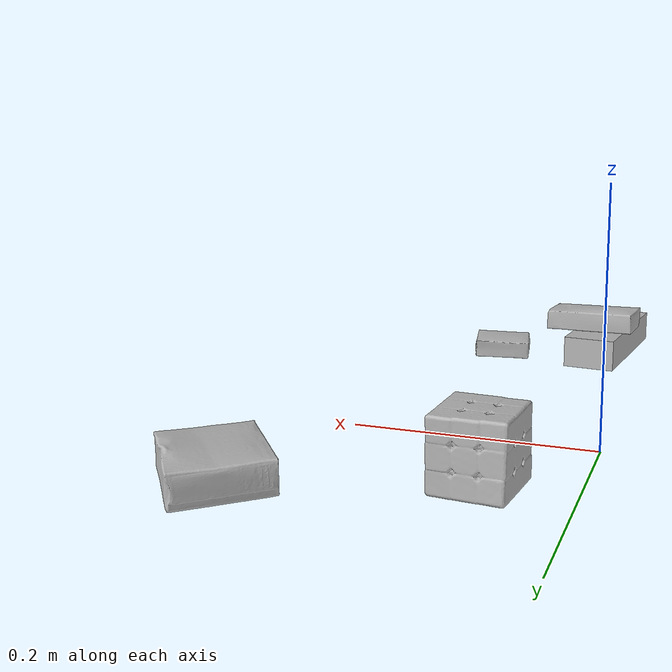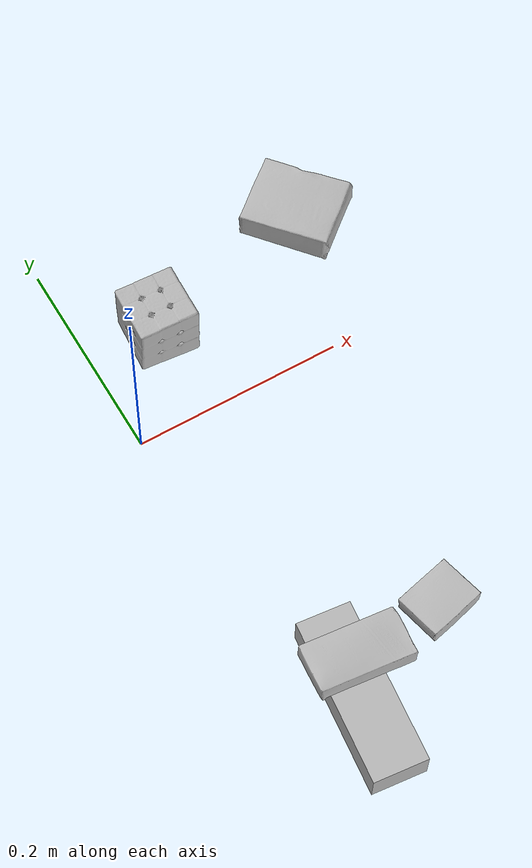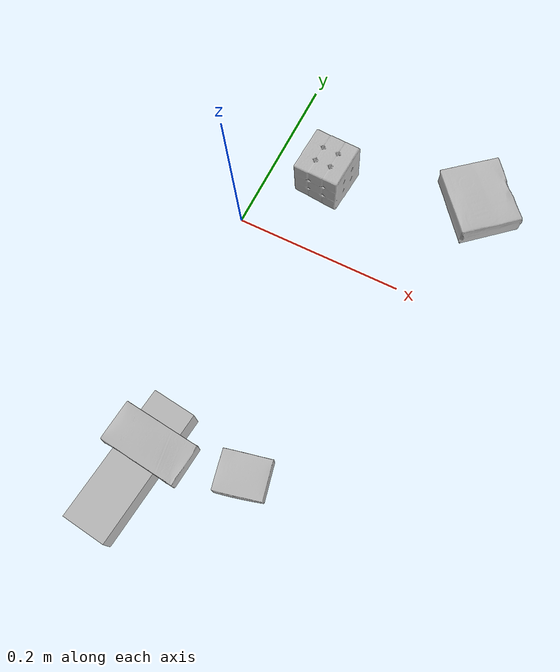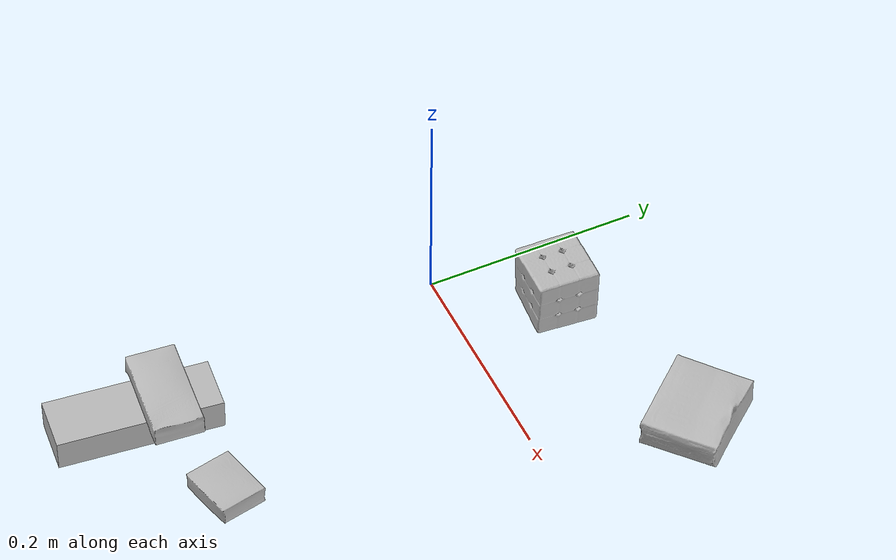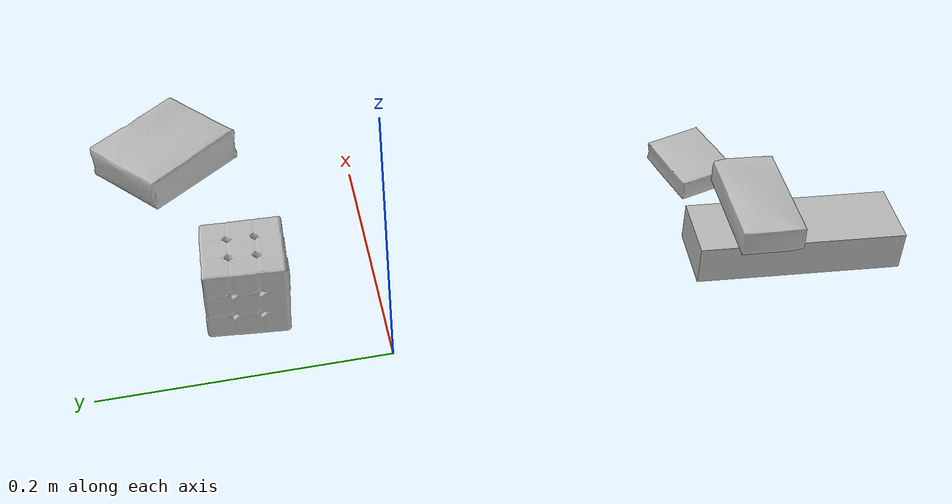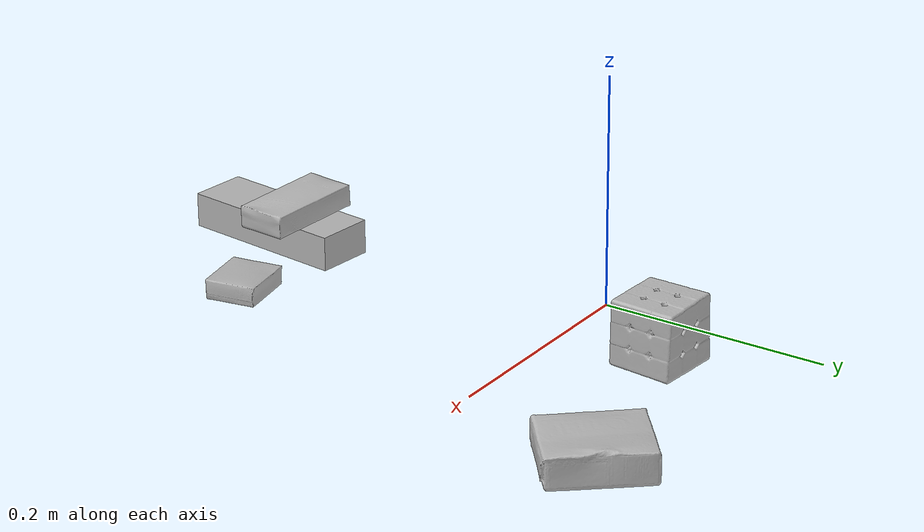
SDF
<sdf version="1.4">
  <world name="default">
    <light name="light1" type="point">
      <pose>0 0 1 0 0 0</pose>
      <diffuse>3 3 3 1</diffuse>
      <specular>3 3 3 1</specular>
    </light>
    <light name="light2" type="point">
      <pose>0 0.5 2 0 0 0</pose>
      <diffuse>1 1 1 1</diffuse>
      <specular>1 1 1 1</specular>
    </light>
    <light name="light3" type="point">
      <pose>0 0.5 2 0 0 0</pose>
      <diffuse>3 3 3 1</diffuse>
      <specular>3 3 3 1</specular>
    </light>
    <scene>
      <ambient>0.7 0.7 0.7</ambient>
    </scene>
    <model name="box1">
      <link name="link_box1">
        <collision name="default">
          <geometry>
            <mesh>
              <uri>model://jenga/collision_meshes/collision.obj</uri>
              <scale>1.0 1.0 1.0</scale>
            </mesh>
          </geometry>
          <surface>
            <friction>
              <ode>
                <mu>0.5</mu>
                <mu2>0.5</mu2>
              </ode>
            </friction>
          <contact>
        <ode>
            <max_vel>0</max_vel>
            <min_depth>0.0001</min_depth>
            <kp>1e8</kp>
        </ode>
    </contact></surface>
        </collision>
        <visual name="default">
          <geometry>
            <mesh>
              <uri>model://jenga/visual_meshes/visual.dae</uri>
              <scale>1.0 1.0 1.0</scale>
            </mesh>
          </geometry>
        </visual>
        <inertial>
          <mass>0.28879067301750183</mass>
          <pose>-2.502855807051674e-07 -0.00010250010382151231 -4.0923401684267446e-05 0.0 -7.342154049184251e-07 0.0</pose>
          <inertia>
            <ixx>7.991539e-05</ixx>
            <iyy>0.00054150453</iyy>
            <izz>0.00057810213</izz>
            <ixy>0</ixy>
            <ixz>0</ixz>
            <iyz>0</iyz>
          </inertia>
        </inertial>
      </link>
      <pose>0.03955833613872528 -0.30395641922950745 0.015000040642917156 1.1151063788062428e-06 3.7561003383916187e-07 1.4600556917500072</pose>
    </model>
    <model name="box2">
      <link name="link_box2">
        <collision name="default">
          <geometry>
            <mesh>
              <uri>model://sugar_box/collision_meshes/collision.obj</uri>
              <scale>0.5 0.5 0.5</scale>
            </mesh>
          </geometry>
          <surface>
            <friction>
              <ode>
                <mu>0.5</mu>
                <mu2>0.5</mu2>
              </ode>
            </friction>
          <contact>
        <ode>
            <max_vel>0</max_vel>
            <min_depth>0.0001</min_depth>
            <kp>1e8</kp>
        </ode>
    </contact></surface>
        </collision>
        <visual name="default">
          <geometry>
            <mesh>
              <uri>model://sugar_box/visual_meshes/visual.dae</uri>
              <scale>0.5 0.5 0.5</scale>
            </mesh>
          </geometry>
        </visual>
        <inertial>
          <mass>0.10389333218336105</mass>
          <pose>0.000517186417710036 1.9245549992774613e-05 -0.00018182402709499002 -0.00040462615469338603 0.0010506637547558321 0.0026153785561208315</pose>
          <inertia>
            <ixx>2.1640906e-05</ixx>
            <iyy>6.994788e-05</iyy>
            <izz>8.373595e-05</izz>
            <ixy>0</ixy>
            <ixz>0</ixz>
            <iyz>0</iyz>
          </inertia>
        </inertial>
      </link>
      <pose>0.05124278739094734 -0.27820098400115967 0.04135921970009804 -0.008912480512801907 -0.023826663680569876 3.0385771561931065</pose>
    </model>
    <model name="box3">
      <link name="link_box3">
        <collision name="default">
          <geometry>
            <mesh>
              <uri>model://rubiks_cube/collision_meshes/collision.obj</uri>
              <scale>1.0 1.0 1.0</scale>
            </mesh>
          </geometry>
          <surface>
            <friction>
              <ode>
                <mu>0.5</mu>
                <mu2>0.5</mu2>
              </ode>
            </friction>
          <contact>
        <ode>
            <max_vel>0</max_vel>
            <min_depth>0.0001</min_depth>
            <kp>1e8</kp>
        </ode>
    </contact></surface>
        </collision>
        <visual name="default">
          <geometry>
            <mesh>
              <uri>model://rubiks_cube/visual_meshes/visual.dae</uri>
              <scale>1.0 1.0 1.0</scale>
            </mesh>
          </geometry>
        </visual>
        <inertial>
          <mass>0.21973572671413422</mass>
          <pose>2.6721041649580002e-05 5.256966323941015e-05 -7.264316082000732e-06 -0.054673783840129137 -0.09814154164948871 -0.03445565380518822</pose>
          <inertia>
            <ixx>0.00012141874</ixx>
            <iyy>0.000120852514</iyy>
            <izz>0.00012242487</izz>
            <ixy>0</ixy>
            <ixz>0</ixz>
            <iyz>0</iyz>
          </inertia>
        </inertial>
      </link>
      <pose>0.0680999904870987 0.09076902270317078 0.02867896854877472 -2.727649987636209e-06 -7.919934584770507e-07 -0.05223326452805715</pose>
    </model>
    <model name="box4">
      <link name="link_box4">
        <collision name="default">
          <geometry>
            <mesh>
              <uri>model://pudding_box/collision_meshes/collision.obj</uri>
              <scale>0.5 0.5 0.5</scale>
            </mesh>
          </geometry>
          <surface>
            <friction>
              <ode>
                <mu>0.5</mu>
                <mu2>0.5</mu2>
              </ode>
            </friction>
          <contact>
        <ode>
            <max_vel>0</max_vel>
            <min_depth>0.0001</min_depth>
            <kp>1e8</kp>
        </ode>
    </contact></surface>
        </collision>
        <visual name="default">
          <geometry>
            <mesh>
              <uri>model://pudding_box/visual_meshes/visual.dae</uri>
              <scale>0.5 0.5 0.5</scale>
            </mesh>
          </geometry>
        </visual>
        <inertial>
          <mass>0.0391676165163517</mass>
          <pose>0.00024474109522998333 0.00040339428232982755 -0.0002594413817860186 0.005213101313254789 -0.0066037982630024914 0.020079830751203582</pose>
          <inertia>
            <ixx>1.1069244e-05</ixx>
            <iyy>7.447467e-06</iyy>
            <izz>1.634663e-05</izz>
            <ixy>0</ixy>
            <ixz>0</ixz>
            <iyz>0</iyz>
          </inertia>
        </inertial>
      </link>
      <pose>0.1441136598587036 -0.2621886134147644 0.00986290443688631 0.022348553071979173 -0.011391701531466234 -1.3535617858265636</pose>
    </model>
    <model name="box5">
      <link name="link_box5">
        <collision name="default">
          <geometry>
            <mesh>
              <uri>model://gelatin_box/collision_meshes/collision.obj</uri>
              <scale>1.0 1.0 1.0</scale>
            </mesh>
          </geometry>
          <surface>
            <friction>
              <ode>
                <mu>0.5</mu>
                <mu2>0.5</mu2>
              </ode>
            </friction>
          <contact>
        <ode>
            <max_vel>0</max_vel>
            <min_depth>0.0001</min_depth>
            <kp>1e8</kp>
        </ode>
    </contact></surface>
        </collision>
        <visual name="default">
          <geometry>
            <mesh>
              <uri>model://gelatin_box/visual_meshes/visual.dae</uri>
              <scale>1.0 1.0 1.0</scale>
            </mesh>
          </geometry>
        </visual>
        <inertial>
          <mass>0.24157556891441345</mass>
          <pose>0.0004319618456065655 0.00011156872642459348 -0.0003640321083366871 -0.0010503718658393805 -0.0047558177571565665 0.016440565059328244</pose>
          <inertia>
            <ixx>0.00017053263</ixx>
            <iyy>0.00012181056</iyy>
            <izz>0.00025958868</izz>
            <ixy>0</ixy>
            <ixz>0</ixz>
            <iyz>0</iyz>
          </inertia>
        </inertial>
      </link>
      <pose>0.24275992810726166 0.13978762924671173 0.015168312005698681 0.005597013329928258 -0.007304066366780305 0.6895029111167793</pose>
    </model>
  <physics type="ode">
      <max_contacts>50</max_contacts>
      <ode>
        <solver>
          <type>quick</type>
          <iters>75</iters>
        </solver>
        <constraints>
          <contact_max_correcting_vel>0</contact_max_correcting_vel>
          <contact_surface_layer>0</contact_surface_layer>
        </constraints>
      </ode>
    </physics></world>
</sdf>
